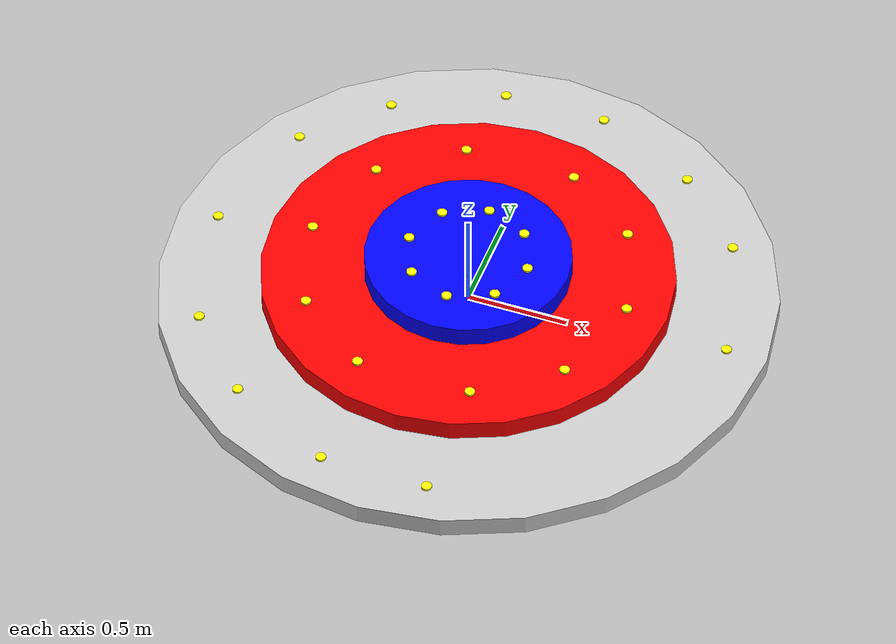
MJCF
<mujoco>
    <asset>
      <material name="gray"  rgba="0.8 0.8 0.8 1"/>
      <material name="red"   rgba="1 0 0 1"/>
      <material name="blue"  rgba="0 0 1 1"/>
      <material name="yellow" rgba="1 1 0 1"/>
    </asset>

    <worldbody>
      <!-- 円柱：土台 -->
      <geom type="cylinder" size="1.5 0.05" pos="0 0 0.05" material="gray"/>
      <!-- 円柱：中段 -->
      <geom type="cylinder" size="1.0 0.05" pos="0 0 0.15" material="red"/>
      <!-- 円柱：上段 -->
      <geom type="cylinder" size="0.5 0.05" pos="0 0 0.25" material="blue"/>

      <!-- コイン配置（最上段） -->
      <!-- 半径0.3m、8個配置 -->
      <!-- コインサイズ: 直径=0.05m, 高さ=0.01m -->
      <!-- 中心高さ=0.25+0.05=0.30m -->
      <!-- 赤段（中段）: 半径0.8m, 10個配置 -->
      <!-- 灰段（下段）: 半径1.3m, 12個配置 -->

      <!-- 関数的に配置 -->
      <!-- Pythonで生成した結果を貼り付けた例 -->
      <!-- コイン配置: 上段 -->
      <geom type="cylinder" size="0.025 0.005" pos="0.30 0.00 0.305" material="yellow"/>
      <geom type="cylinder" size="0.025 0.005" pos="0.21 0.21 0.305" material="yellow"/>
      <geom type="cylinder" size="0.025 0.005" pos="0.00 0.30 0.305" material="yellow"/>
      <geom type="cylinder" size="0.025 0.005" pos="-0.21 0.21 0.305" material="yellow"/>
      <geom type="cylinder" size="0.025 0.005" pos="-0.30 0.00 0.305" material="yellow"/>
      <geom type="cylinder" size="0.025 0.005" pos="-0.21 -0.21 0.305" material="yellow"/>
      <geom type="cylinder" size="0.025 0.005" pos="0.00 -0.30 0.305" material="yellow"/>
      <geom type="cylinder" size="0.025 0.005" pos="0.21 -0.21 0.305" material="yellow"/>

      <!-- コイン配置: 中段（赤） -->
      <geom type="cylinder" size="0.025 0.005" pos="0.80 0.00 0.205" material="yellow"/>
      <geom type="cylinder" size="0.025 0.005" pos="0.65 0.47 0.205" material="yellow"/>
      <geom type="cylinder" size="0.025 0.005" pos="0.28 0.75 0.205" material="yellow"/>
      <geom type="cylinder" size="0.025 0.005" pos="-0.28 0.75 0.205" material="yellow"/>
      <geom type="cylinder" size="0.025 0.005" pos="-0.65 0.47 0.205" material="yellow"/>
      <geom type="cylinder" size="0.025 0.005" pos="-0.80 0.00 0.205" material="yellow"/>
      <geom type="cylinder" size="0.025 0.005" pos="-0.65 -0.47 0.205" material="yellow"/>
      <geom type="cylinder" size="0.025 0.005" pos="-0.28 -0.75 0.205" material="yellow"/>
      <geom type="cylinder" size="0.025 0.005" pos="0.28 -0.75 0.205" material="yellow"/>
      <geom type="cylinder" size="0.025 0.005" pos="0.65 -0.47 0.205" material="yellow"/>

      <!-- コイン配置: 最下段（灰） -->
      <geom type="cylinder" size="0.025 0.005" pos="1.30 0.00 0.105" material="yellow"/>
      <geom type="cylinder" size="0.025 0.005" pos="1.13 0.65 0.105" material="yellow"/>
      <geom type="cylinder" size="0.025 0.005" pos="0.78 1.02 0.105" material="yellow"/>
      <geom type="cylinder" size="0.025 0.005" pos="0.26 1.28 0.105" material="yellow"/>
      <geom type="cylinder" size="0.025 0.005" pos="-0.26 1.28 0.105" material="yellow"/>
      <geom type="cylinder" size="0.025 0.005" pos="-0.78 1.02 0.105" material="yellow"/>
      <geom type="cylinder" size="0.025 0.005" pos="-1.13 0.65 0.105" material="yellow"/>
      <geom type="cylinder" size="0.025 0.005" pos="-1.30 0.00 0.105" material="yellow"/>
      <geom type="cylinder" size="0.025 0.005" pos="-1.13 -0.65 0.105" material="yellow"/>
      <geom type="cylinder" size="0.025 0.005" pos="-0.78 -1.02 0.105" material="yellow"/>
      <geom type="cylinder" size="0.025 0.005" pos="-0.26 -1.28 0.105" material="yellow"/>
      <geom type="cylinder" size="0.025 0.005" pos="0.26 -1.28 0.105" material="yellow"/>
    </worldbody>
  </mujoco>
